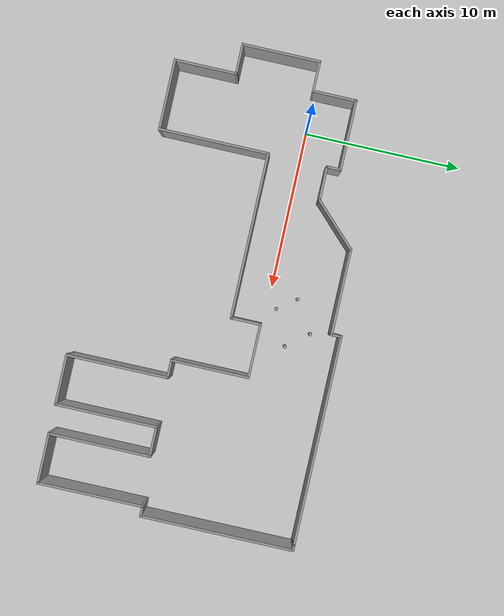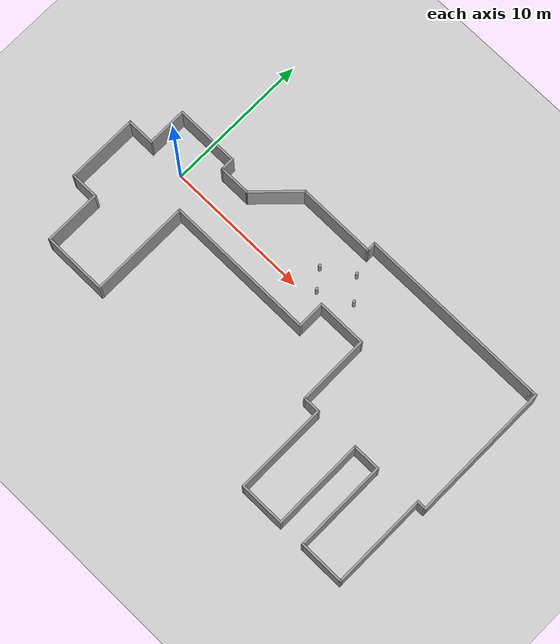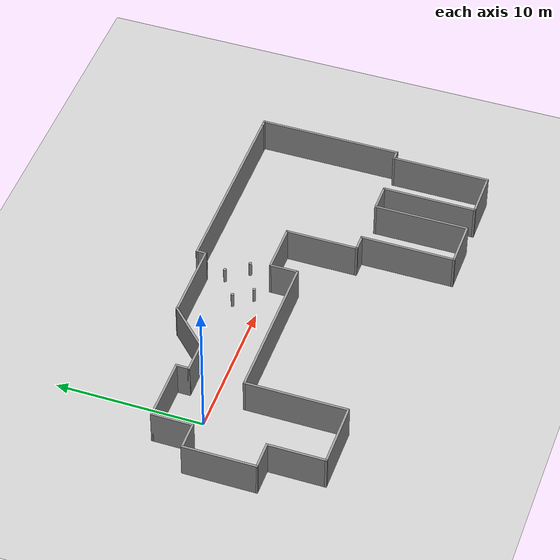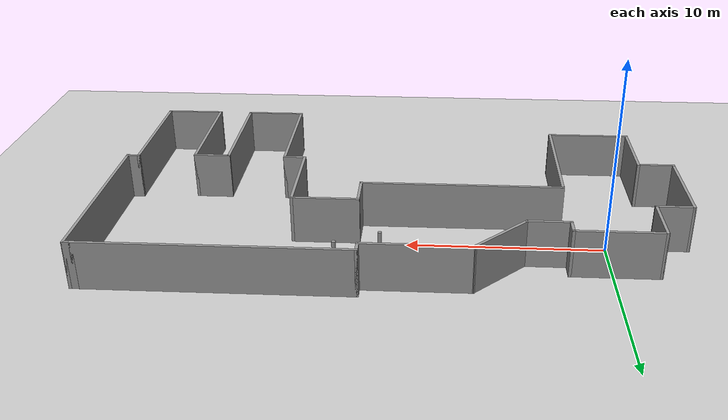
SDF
<sdf version="1.6">
 <world name="default">
  <model name="ground_plane">
   <static>1</static>
   <link name="link">
    <collision name="collision">
     <geometry><plane><normal>0 0 1</normal><size>100 100</size></plane></geometry>
     <surface>
      <contact><collide_bitmask>65535</collide_bitmask></contact>
      <friction><ode><mu>100</mu><mu2>50</mu2></ode></friction>
     </surface>
    </collision>
    <visual name="visual">
     <cast_shadows>0</cast_shadows>
     <geometry><plane><normal>0 0 1</normal><size>100 100</size></plane></geometry>
     <material>
      <script><uri>file://media/materials/scripts/gazebo.material</uri><name>Gazebo/Grey</name></script>
     </material>
    </visual>
   </link>
  </model>
  <model name="hospitalMel">
   <pose>10.7024 -3.26958 0 0 -0 0</pose>
   <link name="Wall_0">
    <collision name="Wall_0_Collision">
     <geometry><box><size>2.75 0.15 2.5</size></box></geometry>
     <pose>0 0 1.25 0 -0 0</pose>
    </collision>
    <visual name="Wall_0_Visual">
     <pose>0 0 1.25 0 -0 0</pose>
     <geometry><box><size>2.75 0.15 2.5</size></box></geometry>
     <material>
      <script><uri>file://media/materials/scripts/gazebo.material</uri><name>Gazebo/Grey</name></script>
      <ambient>1 1 1 1</ambient>
     </material>
     <meta><layer>0</layer></meta>
    </visual>
    <pose>-12.9706 4.50442 0 0 -0 1.5708</pose>
   </link>
   <link name="Wall_10">
    <collision name="Wall_10_Collision">
     <geometry><box><size>13.25 0.15 2.5</size></box></geometry>
     <pose>0 0 1.25 0 -0 0</pose>
    </collision>
    <visual name="Wall_10_Visual">
     <pose>0 0 1.25 0 -0 0</pose>
     <geometry><box><size>13.25 0.15 2.5</size></box></geometry>
     <material>
      <script><uri>file://media/materials/scripts/gazebo.material</uri><name>Gazebo/Grey</name></script>
      <ambient>1 1 1 1</ambient>
     </material>
     <meta><layer>0</layer></meta>
    </visual>
    <pose>7.925 8.1 0 0 -0 0</pose>
   </link>
   <link name="Wall_16">
    <collision name="Wall_16_Collision">
     <geometry><box><size>0.5 0.15 2.5</size></box></geometry>
     <pose>0 0 1.25 0 -0 0</pose>
    </collision>
    <visual name="Wall_16_Visual">
     <pose>0 0 1.25 0 -0 0</pose>
     <geometry><box><size>0.5 0.15 2.5</size></box></geometry>
     <material>
      <script><uri>file://media/materials/scripts/gazebo.material</uri><name>Gazebo/Grey</name></script>
      <ambient>1 1 1 1</ambient>
     </material>
     <meta><layer>0</layer></meta>
    </visual>
    <pose>14.65 8.1 0 0 -0 0</pose>
   </link>
   <link name="Wall_18">
    <collision name="Wall_18_Collision">
     <geometry><box><size>9.75 0.15 2.5</size></box></geometry>
     <pose>0 0 1.25 0 -0 0</pose>
    </collision>
    <visual name="Wall_18_Visual">
     <pose>0 0 1.25 0 -0 0</pose>
     <geometry><box><size>9.75 0.15 2.5</size></box></geometry>
     <material>
      <script><uri>file://media/materials/scripts/gazebo.material</uri><name>Gazebo/Grey</name></script>
      <ambient>1 1 1 1</ambient>
     </material>
     <meta><layer>0</layer></meta>
    </visual>
    <pose>14.825 3.3 0 0 -0 -1.5708</pose>
   </link>
   <link name="Wall_19">
    <collision name="Wall_19_Collision">
     <geometry><box><size>0.75 0.15 2.5</size></box></geometry>
     <pose>0 0 1.25 0 -0 0</pose>
    </collision>
    <visual name="Wall_19_Visual">
     <pose>0 0 1.25 0 -0 0</pose>
     <geometry><box><size>0.75 0.15 2.5</size></box></geometry>
     <material>
      <script><uri>file://media/materials/scripts/gazebo.material</uri><name>Gazebo/Grey</name></script>
      <ambient>1 1 1 1</ambient>
     </material>
     <meta><layer>0</layer></meta>
    </visual>
    <pose>14.525 -1.5 0 0 -0 3.14159</pose>
   </link>
   <link name="Wall_21">
    <collision name="Wall_21_Collision">
     <geometry><box><size>6.75 0.15 2.5</size></box></geometry>
     <pose>0 0 1.25 0 -0 0</pose>
    </collision>
    <visual name="Wall_21_Visual">
     <pose>0 0 1.25 0 -0 0</pose>
     <geometry><box><size>6.75 0.15 2.5</size></box></geometry>
     <material>
      <script><uri>file://media/materials/scripts/gazebo.material</uri><name>Gazebo/Grey</name></script>
      <ambient>1 1 1 1</ambient>
     </material>
     <meta><layer>0</layer></meta>
    </visual>
    <pose>14.225 -4.8 0 0 -0 -1.5708</pose>
   </link>
   <link name="Wall_22">
    <collision name="Wall_22_Collision">
     <geometry><box><size>3.25 0.15 2.5</size></box></geometry>
     <pose>0 0 1.25 0 -0 0</pose>
    </collision>
    <visual name="Wall_22_Visual">
     <pose>0 0 1.25 0 -0 0</pose>
     <geometry><box><size>3.25 0.15 2.5</size></box></geometry>
     <material>
      <script><uri>file://media/materials/scripts/gazebo.material</uri><name>Gazebo/Grey</name></script>
      <ambient>1 1 1 1</ambient>
     </material>
     <meta><layer>0</layer></meta>
    </visual>
    <pose>12.675 -8.1 0 0 -0 3.14159</pose>
   </link>
   <link name="Wall_23">
    <collision name="Wall_23_Collision">
     <geometry><box><size>6.5 0.15 2.5</size></box></geometry>
     <pose>0 0 1.25 0 -0 0</pose>
    </collision>
    <visual name="Wall_23_Visual">
     <pose>0 0 1.25 0 -0 0</pose>
     <geometry><box><size>6.5 0.15 2.5</size></box></geometry>
     <material>
      <script><uri>file://media/materials/scripts/gazebo.material</uri><name>Gazebo/Grey</name></script>
      <ambient>1 1 1 1</ambient>
     </material>
     <meta><layer>0</layer></meta>
    </visual>
    <pose>11.125 -4.925 0 0 -0 1.5708</pose>
   </link>
   <link name="Wall_24">
    <collision name="Wall_24_Collision">
     <geometry><box><size>2 0.15 2.5</size></box></geometry>
     <pose>0 0 1.25 0 -0 0</pose>
    </collision>
    <visual name="Wall_24_Visual">
     <pose>0 0 1.25 0 -0 0</pose>
     <geometry><box><size>2 0.15 2.5</size></box></geometry>
     <material>
      <script><uri>file://media/materials/scripts/gazebo.material</uri><name>Gazebo/Grey</name></script>
      <ambient>1 1 1 1</ambient>
     </material>
     <meta><layer>0</layer></meta>
    </visual>
    <pose>10.2 -1.75 0 0 -0 3.14159</pose>
   </link>
   <link name="Wall_25">
    <collision name="Wall_25_Collision">
     <geometry><box><size>6.5 0.15 2.5</size></box></geometry>
     <pose>0 0 1.25 0 -0 0</pose>
    </collision>
    <visual name="Wall_25_Visual">
     <pose>0 0 1.25 0 -0 0</pose>
     <geometry><box><size>6.5 0.15 2.5</size></box></geometry>
     <material>
      <script><uri>file://media/materials/scripts/gazebo.material</uri><name>Gazebo/Grey</name></script>
      <ambient>1 1 1 1</ambient>
     </material>
     <meta><layer>0</layer></meta>
    </visual>
    <pose>9.275 -4.925 0 0 -0 -1.5708</pose>
   </link>
   <link name="Wall_26">
    <collision name="Wall_26_Collision">
     <geometry><box><size>3.25 0.15 2.5</size></box></geometry>
     <pose>0 0 1.25 0 -0 0</pose>
    </collision>
    <visual name="Wall_26_Visual">
     <pose>0 0 1.25 0 -0 0</pose>
     <geometry><box><size>3.25 0.15 2.5</size></box></geometry>
     <material>
      <script><uri>file://media/materials/scripts/gazebo.material</uri><name>Gazebo/Grey</name></script>
      <ambient>1 1 1 1</ambient>
     </material>
     <meta><layer>0</layer></meta>
    </visual>
    <pose>7.725 -8.1 0 0 -0 3.14159</pose>
   </link>
   <link name="Wall_27">
    <collision name="Wall_27_Collision">
     <geometry><box><size>6.5 0.15 2.5</size></box></geometry>
     <pose>0 0 1.25 0 -0 0</pose>
    </collision>
    <visual name="Wall_27_Visual">
     <pose>0 0 1.25 0 -0 0</pose>
     <geometry><box><size>6.5 0.15 2.5</size></box></geometry>
     <material>
      <script><uri>file://media/materials/scripts/gazebo.material</uri><name>Gazebo/Grey</name></script>
      <ambient>1 1 1 1</ambient>
     </material>
     <meta><layer>0</layer></meta>
    </visual>
    <pose>6.175 -4.925 0 0 -0 1.5708</pose>
   </link>
   <link name="Wall_28">
    <collision name="Wall_28_Collision">
     <geometry><box><size>1.25 0.15 2.5</size></box></geometry>
     <pose>0 0 1.25 0 -0 0</pose>
    </collision>
    <visual name="Wall_28_Visual">
     <pose>0 0 1.25 0 -0 0</pose>
     <geometry><box><size>1.25 0.15 2.5</size></box></geometry>
     <material>
      <script><uri>file://media/materials/scripts/gazebo.material</uri><name>Gazebo/Grey</name></script>
      <ambient>1 1 1 1</ambient>
     </material>
     <meta><layer>0</layer></meta>
    </visual>
    <pose>5.625 -1.75 0 0 -0 3.14159</pose>
   </link>
   <link name="Wall_29">
    <collision name="Wall_29_Collision">
     <geometry><box><size>5 0.15 2.5</size></box></geometry>
     <pose>0 0 1.25 0 -0 0</pose>
    </collision>
    <visual name="Wall_29_Visual">
     <pose>0 0 1.25 0 -0 0</pose>
     <geometry><box><size>5 0.15 2.5</size></box></geometry>
     <material>
      <script><uri>file://media/materials/scripts/gazebo.material</uri><name>Gazebo/Grey</name></script>
      <ambient>1 1 1 1</ambient>
     </material>
     <meta><layer>0</layer></meta>
    </visual>
    <pose>5.075 0.675 0 0 -0 1.5708</pose>
   </link>
   <link name="Wall_3">
    <collision name="Wall_3_Collision">
     <geometry><box><size>4.5 0.15 2.5</size></box></geometry>
     <pose>0 0 1.25 0 -0 0</pose>
    </collision>
    <visual name="Wall_3_Visual">
     <pose>0 0 1.25 0 -0 0</pose>
     <geometry><box><size>4.5 0.15 2.5</size></box></geometry>
     <material>
      <script><uri>file://media/materials/scripts/gazebo.material</uri><name>Gazebo/Grey</name></script>
      <ambient>1 1 1 1</ambient>
     </material>
     <meta><layer>0</layer></meta>
    </visual>
    <pose>-10.7956 5.80442 0 0 -0 0</pose>
   </link>
   <link name="Wall_30">
    <collision name="Wall_30_Collision">
     <geometry><box><size>3.5 0.15 2.5</size></box></geometry>
     <pose>0 0 1.25 0 -0 0</pose>
    </collision>
    <visual name="Wall_30_Visual">
     <pose>0 0 1.25 0 -0 0</pose>
     <geometry><box><size>3.5 0.15 2.5</size></box></geometry>
     <material>
      <script><uri>file://media/materials/scripts/gazebo.material</uri><name>Gazebo/Grey</name></script>
      <ambient>1 1 1 1</ambient>
     </material>
     <meta><layer>0</layer></meta>
    </visual>
    <pose>3.4 3.1 0 0 -0 3.14159</pose>
   </link>
   <link name="Wall_31">
    <collision name="Wall_31_Collision">
     <geometry><box><size>2 0.15 2.5</size></box></geometry>
     <pose>0 0 1.25 0 -0 0</pose>
    </collision>
    <visual name="Wall_31_Visual">
     <pose>0 0 1.25 0 -0 0</pose>
     <geometry><box><size>2 0.15 2.5</size></box></geometry>
     <material>
      <script><uri>file://media/materials/scripts/gazebo.material</uri><name>Gazebo/Grey</name></script>
      <ambient>1 1 1 1</ambient>
     </material>
     <meta><layer>0</layer></meta>
    </visual>
    <pose>1.725 2.175 0 0 -0 -1.5708</pose>
   </link>
   <link name="Wall_32">
    <collision name="Wall_32_Collision">
     <geometry><box><size>10.5 0.15 2.5</size></box></geometry>
     <pose>0 0 1.25 0 -0 0</pose>
    </collision>
    <visual name="Wall_32_Visual">
     <pose>0 0 1.25 0 -0 0</pose>
     <geometry><box><size>10.5 0.15 2.5</size></box></geometry>
     <material>
      <script><uri>file://media/materials/scripts/gazebo.material</uri><name>Gazebo/Grey</name></script>
      <ambient>1 1 1 1</ambient>
     </material>
     <meta><layer>0</layer></meta>
    </visual>
    <pose>-3.45 1.25 0 0 -0 3.14159</pose>
   </link>
   <link name="Wall_33">
    <collision name="Wall_33_Collision">
     <geometry><box><size>7 0.15 2.5</size></box></geometry>
     <pose>0 0 1.25 0 -0 0</pose>
    </collision>
    <visual name="Wall_33_Visual">
     <pose>0 0 1.25 0 -0 0</pose>
     <geometry><box><size>7 0.15 2.5</size></box></geometry>
     <material>
      <script><uri>file://media/materials/scripts/gazebo.material</uri><name>Gazebo/Grey</name></script>
      <ambient>1 1 1 1</ambient>
     </material>
     <meta><layer>0</layer></meta>
    </visual>
    <pose>-8.625 -2.175 0 0 -0 -1.5708</pose>
   </link>
   <link name="Wall_34">
    <collision name="Wall_34_Collision">
     <geometry><box><size>4.5 0.15 2.5</size></box></geometry>
     <pose>0 0 1.25 0 -0 0</pose>
    </collision>
    <visual name="Wall_34_Visual">
     <pose>0 0 1.25 0 -0 0</pose>
     <geometry><box><size>4.5 0.15 2.5</size></box></geometry>
     <material>
      <script><uri>file://media/materials/scripts/gazebo.material</uri><name>Gazebo/Grey</name></script>
      <ambient>1 1 1 1</ambient>
     </material>
     <meta><layer>0</layer></meta>
    </visual>
    <pose>-10.8 -5.6 0 0 -0 3.14159</pose>
   </link>
   <link name="Wall_35">
    <collision name="Wall_35_Collision">
     <geometry><box><size>4 0.15 2.5</size></box></geometry>
     <pose>0 0 1.25 0 -0 0</pose>
    </collision>
    <visual name="Wall_35_Visual">
     <pose>0 0 1.25 0 -0 0</pose>
     <geometry><box><size>4 0.15 2.5</size></box></geometry>
     <material>
      <script><uri>file://media/materials/scripts/gazebo.material</uri><name>Gazebo/Grey</name></script>
      <ambient>1 1 1 1</ambient>
     </material>
     <meta><layer>0</layer></meta>
    </visual>
    <pose>-12.975 -3.675 0 0 -0 1.5708</pose>
   </link>
   <link name="Wall_36">
    <collision name="Wall_36_Collision">
     <geometry><box><size>2 0.15 2.5</size></box></geometry>
     <pose>0 0 1.25 0 -0 0</pose>
    </collision>
    <visual name="Wall_36_Visual">
     <pose>0 0 1.25 0 -0 0</pose>
     <geometry><box><size>2 0.15 2.5</size></box></geometry>
     <material>
      <script><uri>file://media/materials/scripts/gazebo.material</uri><name>Gazebo/Grey</name></script>
      <ambient>1 1 1 1</ambient>
     </material>
     <meta><layer>0</layer></meta>
    </visual>
    <pose>-13.9 -1.75 0 0 -0 3.14159</pose>
   </link>
   <link name="Wall_37">
    <collision name="Wall_37_Collision">
     <geometry><box><size>5 0.15 2.5</size></box></geometry>
     <pose>0 0 1.25 0 -0 0</pose>
    </collision>
    <visual name="Wall_37_Visual">
     <pose>0 0 1.25 0 -0 0</pose>
     <geometry><box><size>5 0.15 2.5</size></box></geometry>
     <material>
      <script><uri>file://media/materials/scripts/gazebo.material</uri><name>Gazebo/Grey</name></script>
      <ambient>1 1 1 1</ambient>
     </material>
     <meta><layer>0</layer></meta>
    </visual>
    <pose>-14.825 0.675 0 0 -0 1.5708</pose>
   </link>
   <link name="Wall_39">
    <collision name="Wall_39_Collision">
     <geometry><box><size>2 0.15 2.5</size></box></geometry>
     <pose>0 0 1.25 0 -0 0</pose>
    </collision>
    <visual name="Wall_39_Visual">
     <pose>0 0 1.25 0 -0 0</pose>
     <geometry><box><size>2 0.15 2.5</size></box></geometry>
     <material>
      <script><uri>file://media/materials/scripts/gazebo.material</uri><name>Gazebo/Grey</name></script>
      <ambient>1 1 1 1</ambient>
     </material>
     <meta><layer>0</layer></meta>
    </visual>
    <pose>-13.9 3.1 0 0 -0 0</pose>
   </link>
   <link name="Wall_4">
    <collision name="Wall_4_Collision">
     <geometry><box><size>1 0.15 2.5</size></box></geometry>
     <pose>0 0 1.25 0 -0 0</pose>
    </collision>
    <visual name="Wall_4_Visual">
     <pose>0 0 1.25 0 -0 0</pose>
     <geometry><box><size>1 0.15 2.5</size></box></geometry>
     <material>
      <script><uri>file://media/materials/scripts/gazebo.material</uri><name>Gazebo/Grey</name></script>
      <ambient>1 1 1 1</ambient>
     </material>
     <meta><layer>0</layer></meta>
    </visual>
    <pose>-8.62058 5.37942 0 0 -0 -1.5708</pose>
   </link>
   <link name="Wall_5">
    <collision name="Wall_5_Collision">
     <geometry><box><size>2.25 0.15 2.5</size></box></geometry>
     <pose>0 0 1.25 0 -0 0</pose>
    </collision>
    <visual name="Wall_5_Visual">
     <pose>0 0 1.25 0 -0 0</pose>
     <geometry><box><size>2.25 0.15 2.5</size></box></geometry>
     <material>
      <script><uri>file://media/materials/scripts/gazebo.material</uri><name>Gazebo/Grey</name></script>
      <ambient>1 1 1 1</ambient>
     </material>
     <meta><layer>0</layer></meta>
    </visual>
    <pose>-7.57058 4.95442 0 0 -0 0</pose>
   </link>
   <link name="Wall_6">
    <collision name="Wall_6_Collision">
     <geometry><box><size>3.75 0.15 2.5</size></box></geometry>
     <pose>0 0 1.25 0 -0 0</pose>
    </collision>
    <visual name="Wall_6_Visual">
     <pose>0 0 1.25 0 -0 0</pose>
     <geometry><box><size>3.75 0.15 2.5</size></box></geometry>
     <material>
      <script><uri>file://media/materials/scripts/gazebo.material</uri><name>Gazebo/Grey</name></script>
      <ambient>1 1 1 1</ambient>
     </material>
     <meta><layer>0</layer></meta>
    </visual>
    <pose>-5.24779 6.22721 0 0 -0 0.785398</pose>
   </link>
   <link name="Wall_7">
    <collision name="Wall_7_Collision">
     <geometry><box><size>5.5 0.15 2.5</size></box></geometry>
     <pose>0 0 1.25 0 -0 0</pose>
    </collision>
    <visual name="Wall_7_Visual">
     <pose>0 0 1.25 0 -0 0</pose>
     <geometry><box><size>5.5 0.15 2.5</size></box></geometry>
     <material>
      <script><uri>file://media/materials/scripts/gazebo.material</uri><name>Gazebo/Grey</name></script>
      <ambient>1 1 1 1</ambient>
     </material>
     <meta><layer>0</layer></meta>
    </visual>
    <pose>-1.3 7.5 0 0 -0 0</pose>
   </link>
   <link name="Wall_9">
    <collision name="Wall_9_Collision">
     <geometry><box><size>0.75 0.15 2.5</size></box></geometry>
     <pose>0 0 1.25 0 -0 0</pose>
    </collision>
    <visual name="Wall_9_Visual">
     <pose>0 0 1.25 0 -0 0</pose>
     <geometry><box><size>0.75 0.15 2.5</size></box></geometry>
     <material>
      <script><uri>file://media/materials/scripts/gazebo.material</uri><name>Gazebo/Grey</name></script>
      <ambient>1 1 1 1</ambient>
     </material>
     <meta><layer>0</layer></meta>
    </visual>
    <pose>1.375 7.8 0 0 -0 1.5708</pose>
   </link>
   <static>1</static>
  </model>
  <model name="pole_3">
   <link name="link">
    <inertial>
     <mass>0.0953443</mass>
     <inertia>
      <ixx>0.0359089</ixx>
      <ixy>0</ixy>
      <ixz>0</ixz>
      <iyy>0.0359089</iyy>
      <iyz>0</iyz>
      <izz>0.000536427</izz>
     </inertia>
    </inertial>
    <visual name="visual">
     <geometry><cylinder><radius>0.106077</radius><length>2.11795</length></cylinder></geometry>
     <material>
      <script><name>Gazebo/Grey</name><uri>file://media/materials/scripts/gazebo.material</uri></script>
     </material>
    </visual>
    <collision name="collision">
     <geometry><cylinder><radius>0.106077</radius><length>2.11795</length></cylinder></geometry>
     <surface>
      <friction>
       <ode><mu>1</mu><mu2>1</mu2><fdir1>0 0 0</fdir1><slip1>0</slip1><slip2>0</slip2></ode>
       <torsional>
        <coefficient>1</coefficient>
        <patch_radius>0</patch_radius>
        <surface_radius>0</surface_radius>
        <use_patch_radius>1</use_patch_radius>
        <ode><slip>0</slip></ode>
       </torsional>
      </friction>
      <bounce><restitution_coefficient>0</restitution_coefficient><threshold>1e+06</threshold></bounce>
      <contact>
       <collide_without_contact>0</collide_without_contact>
       <collide_without_contact_bitmask>1</collide_without_contact_bitmask>
       <collide_bitmask>1</collide_bitmask>
       <ode>
        <soft_cfm>0</soft_cfm>
        <soft_erp>0.2</soft_erp>
        <kp>1e+13</kp>
        <kd>1</kd>
        <max_vel>0.01</max_vel>
        <min_depth>0</min_depth>
       </ode>
       <bullet>
        <split_impulse>1</split_impulse>
        <split_impulse_penetration_threshold>-0.01</split_impulse_penetration_threshold>
        <soft_cfm>0</soft_cfm>
        <soft_erp>0.2</soft_erp>
        <kp>1e+13</kp>
        <kd>1</kd>
       </bullet>
      </contact>
     </surface>
    </collision>
   </link>
   <static>0</static>
   <pose>10.4084 1.77822 0 0 -0 0</pose>
  </model>
  <model name="pole_5">
   <link name="link">
    <inertial>
     <mass>0.0953443</mass>
     <inertia>
      <ixx>0.0359089</ixx>
      <ixy>0</ixy>
      <ixz>0</ixz>
      <iyy>0.0359089</iyy>
      <iyz>0</iyz>
      <izz>0.000536427</izz>
     </inertia>
    </inertial>
    <visual name="visual">
     <geometry><cylinder><radius>0.106077</radius><length>2.11795</length></cylinder></geometry>
     <material>
      <script><name>Gazebo/Grey</name><uri>file://media/materials/scripts/gazebo.material</uri></script>
     </material>
    </visual>
    <collision name="collision">
     <geometry><cylinder><radius>0.106077</radius><length>2.11795</length></cylinder></geometry>
     <surface>
      <friction>
       <ode><mu>1</mu><mu2>1</mu2><fdir1>0 0 0</fdir1><slip1>0</slip1><slip2>0</slip2></ode>
       <torsional>
        <coefficient>1</coefficient>
        <patch_radius>0</patch_radius>
        <surface_radius>0</surface_radius>
        <use_patch_radius>1</use_patch_radius>
        <ode><slip>0</slip></ode>
       </torsional>
      </friction>
      <bounce><restitution_coefficient>0</restitution_coefficient><threshold>1e+06</threshold></bounce>
      <contact>
       <collide_without_contact>0</collide_without_contact>
       <collide_without_contact_bitmask>1</collide_without_contact_bitmask>
       <collide_bitmask>1</collide_bitmask>
       <ode>
        <soft_cfm>0</soft_cfm>
        <soft_erp>0.2</soft_erp>
        <kp>1e+13</kp>
        <kd>1</kd>
        <max_vel>0.01</max_vel>
        <min_depth>0</min_depth>
       </ode>
       <bullet>
        <split_impulse>1</split_impulse>
        <split_impulse_penetration_threshold>-0.01</split_impulse_penetration_threshold>
        <soft_cfm>0</soft_cfm>
        <soft_erp>0.2</soft_erp>
        <kp>1e+13</kp>
        <kd>1</kd>
       </bullet>
      </contact>
     </surface>
    </collision>
   </link>
   <static>0</static>
   <pose>11.3059 0.586923 0 0 -0 0</pose>
  </model>
  <model name="pole_6">
   <link name="link">
    <inertial>
     <mass>0.0953443</mass>
     <inertia>
      <ixx>0.0359089</ixx>
      <ixy>0</ixy>
      <ixz>0</ixz>
      <iyy>0.0359089</iyy>
      <iyz>0</iyz>
      <izz>0.000536427</izz>
     </inertia>
    </inertial>
    <visual name="visual">
     <geometry><cylinder><radius>0.106077</radius><length>2.11795</length></cylinder></geometry>
     <material>
      <script><name>Gazebo/Grey</name><uri>file://media/materials/scripts/gazebo.material</uri></script>
     </material>
    </visual>
    <collision name="collision">
     <geometry><cylinder><radius>0.106077</radius><length>2.11795</length></cylinder></geometry>
     <surface>
      <friction>
       <ode><mu>1</mu><mu2>1</mu2><fdir1>0 0 0</fdir1><slip1>0</slip1><slip2>0</slip2></ode>
       <torsional>
        <coefficient>1</coefficient>
        <patch_radius>0</patch_radius>
        <surface_radius>0</surface_radius>
        <use_patch_radius>1</use_patch_radius>
        <ode><slip>0</slip></ode>
       </torsional>
      </friction>
      <bounce><restitution_coefficient>0</restitution_coefficient><threshold>1e+06</threshold></bounce>
      <contact>
       <collide_without_contact>0</collide_without_contact>
       <collide_without_contact_bitmask>1</collide_without_contact_bitmask>
       <collide_bitmask>1</collide_bitmask>
       <ode>
        <soft_cfm>0</soft_cfm>
        <soft_erp>0.2</soft_erp>
        <kp>1e+13</kp>
        <kd>1</kd>
        <max_vel>0.01</max_vel>
        <min_depth>0</min_depth>
       </ode>
       <bullet>
        <split_impulse>1</split_impulse>
        <split_impulse_penetration_threshold>-0.01</split_impulse_penetration_threshold>
        <soft_cfm>0</soft_cfm>
        <soft_erp>0.2</soft_erp>
        <kp>1e+13</kp>
        <kd>1</kd>
       </bullet>
      </contact>
     </surface>
    </collision>
   </link>
   <static>0</static>
   <pose>12.3904 3.02039 0 0 -0 0</pose>
  </model>
  <model name="pole_7">
   <link name="link">
    <inertial>
     <mass>0.0953443</mass>
     <inertia>
      <ixx>0.0359089</ixx>
      <ixy>0</ixy>
      <ixz>0</ixz>
      <iyy>0.0359089</iyy>
      <iyz>0</iyz>
      <izz>0.000536427</izz>
     </inertia>
    </inertial>
    <visual name="visual">
     <geometry><cylinder><radius>0.106077</radius><length>2.11795</length></cylinder></geometry>
     <material>
      <script><name>Gazebo/Grey</name><uri>file://media/materials/scripts/gazebo.material</uri></script>
     </material>
    </visual>
    <collision name="collision">
     <geometry><cylinder><radius>0.106077</radius><length>2.11795</length></cylinder></geometry>
     <surface>
      <friction>
       <ode><mu>1</mu><mu2>1</mu2><fdir1>0 0 0</fdir1><slip1>0</slip1><slip2>0</slip2></ode>
       <torsional>
        <coefficient>1</coefficient>
        <patch_radius>0</patch_radius>
        <surface_radius>0</surface_radius>
        <use_patch_radius>1</use_patch_radius>
        <ode><slip>0</slip></ode>
       </torsional>
      </friction>
      <bounce><restitution_coefficient>0</restitution_coefficient><threshold>1e+06</threshold></bounce>
      <contact>
       <collide_without_contact>0</collide_without_contact>
       <collide_without_contact_bitmask>1</collide_without_contact_bitmask>
       <collide_bitmask>1</collide_bitmask>
       <ode>
        <soft_cfm>0</soft_cfm>
        <soft_erp>0.2</soft_erp>
        <kp>1e+13</kp>
        <kd>1</kd>
        <max_vel>0.01</max_vel>
        <min_depth>0</min_depth>
       </ode>
       <bullet>
        <split_impulse>1</split_impulse>
        <split_impulse_penetration_threshold>-0.01</split_impulse_penetration_threshold>
        <soft_cfm>0</soft_cfm>
        <soft_erp>0.2</soft_erp>
        <kp>1e+13</kp>
        <kd>1</kd>
       </bullet>
      </contact>
     </surface>
    </collision>
   </link>
   <static>0</static>
   <pose>13.5006 1.62671 0 0 -0 0</pose>
  </model>
 </world>
</sdf>
